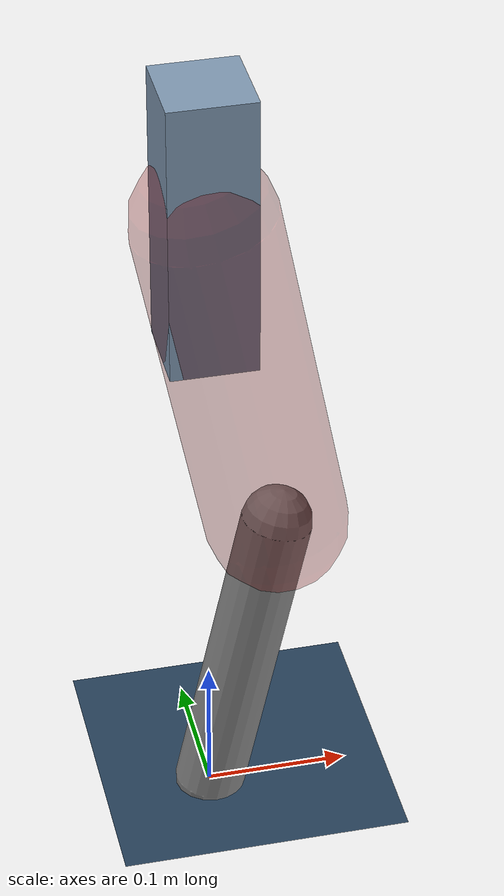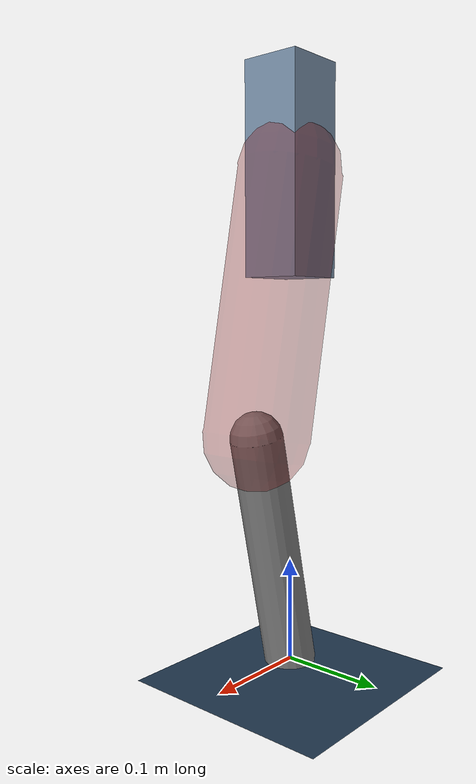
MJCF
<mujoco model="Hopper2D">
	<compiler inertiafromgeom="true" angle="radian" />
	<option timestep="0.001" integrator="implicit" cone="elliptic" solver="Newton" tolerance="1e-10" />

	<default>
		<geom contype="1" conaffinity="1" condim="3" friction="2 0.005 0.0001" solref="0.005 1" />
		<joint limited="true" damping="0.1" />
	</default>

	<asset>
		<texture name="skybox" type="skybox" builtin="gradient" rgb1=".4 .6 .8" rgb2="0 0 0" width="800" height="800" />
		<texture name="grid" type="2d" builtin="checker" rgb1=".1 .2 .3" rgb2=".2 .3 .4" width="300" height="300" mark="edge" markrgb=".2 .3 .4" />
		<material name="ground" texture="grid" texrepeat="1 1" texuniform="true" reflectance="0.1" />
		<material name="leg" rgba="0.5 0.6 0.7 1" />
	</asset>

	<worldbody>

		<geom name="floor" type="plane" size="5 5 0.25" material="ground" />

		<light directional="false" diffuse="0.8 0.8 0.8" specular="0.3 0.3 0.3" pos="0 0 2" dir="0 0 -1" />
		<light mode="targetbodycom" target="base" directional="false" diffuse="0.8 0.8 0.8" specular="0.3 0.3 0.3" pos="0 0 2" dir="0 0 -1" />

		<camera name="fixed" pos="0 -2 1" xyaxes="1 0 0 0 0 1" />
		<camera name="tracking" mode="trackcom" pos="0 -3 1" />

		<body name="root" pos="0 0 0.47464714999093477">
			<joint name="slide_x" type="slide" axis="1 0 0" range="-100 100" />
			<joint name="slide_z" type="slide" axis="0 0 1" range="0 10" />

			<body name="base" pos="0 0 0">
				<geom name="torso" type="box" size="0.03 0.03 0.1" mass="2.605" material="leg" />

				<body name="link1" pos="0 0 0" euler="0 1.3763650121668376 0">
					<joint type="hinge" axis="0 -1 0" pos="0 0 0" name="hinge1" limited="true" range="-3.14 3.14" stiffness="0" damping="0.1" />
					<geom name="thigh" type="capsule" fromto="0 0 0 0.253199569941329 0 0" size="0.05" rgba="0.5 0 0 0.3" mass="0.8647188818474553" />

					<body name="link2" pos="0.253199569941329 0 0" euler="0 0.40740445368729333 0">
						<joint type="hinge" axis="0 -1 0" pos="0 0 0" name="hinge2" limited="true" range="-3.14 3.14" stiffness="0" damping="0.1" />
						<geom name="shank" type="capsule" fromto="0 0 0 0.2314475800496058 0 0" size="0.025" mass="0.42715806403968465" />

					</body>
				</body>
			</body>
		</body>
	</worldbody>

	<actuator>
		<motor name="torque1" joint="hinge1" ctrlrange="-120.23131302464051 120.23131302464051" ctrllimited="true" gear="1" />
		<motor name="torque2" joint="hinge2" ctrlrange="-63.672404008224795 63.672404008224795" ctrllimited="true" gear="1" />
	</actuator>
</mujoco>
